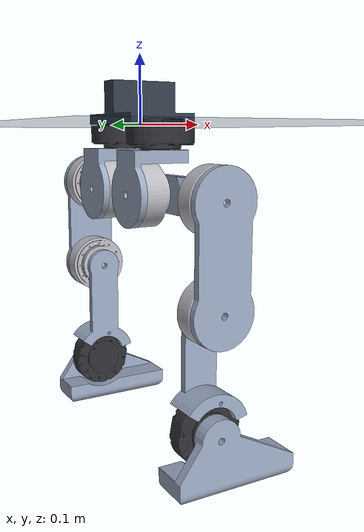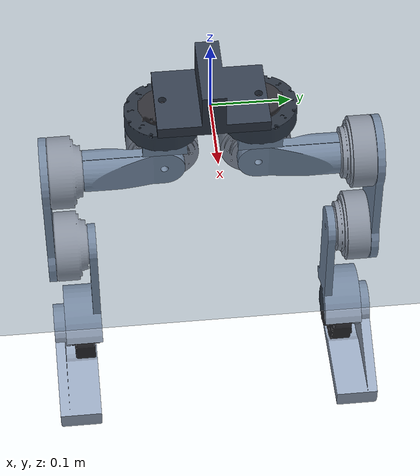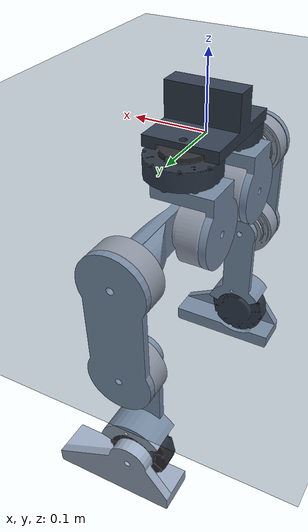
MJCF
<mujoco model="big_rabbit scene">
  <!-- big_rabbit.xml は big_rabbit_isaac/reference_model/big_rabbit_isaac.xml のコピー。
       Isaac の USD も同じ MJCF から生成しているので、両者のモデルは定義上一致する。
       床は MJCF 側に入れない方針なので、ここで足す。 -->
  <include file="big_rabbit.xml"/>

  <visual>
    <headlight diffuse="0.6 0.6 0.6" ambient="0.3 0.3 0.3" specular="0 0 0"/>
    <rgba haze="0.15 0.25 0.35 1"/>
    <!-- offwidth/offheight は動画書き出し（オフスクリーン描画）の上限。既定 640x480 では足りない。 -->
    <global azimuth="150" elevation="-15" offwidth="1280" offheight="960"/>
  </visual>

  <asset>
    <texture type="skybox" builtin="gradient" rgb1="0.3 0.5 0.7" rgb2="0 0 0" width="512" height="3072"/>
    <texture type="2d" name="groundplane" builtin="checker" mark="edge" rgb1="0.2 0.3 0.4"
             rgb2="0.1 0.2 0.3" markrgb="0.8 0.8 0.8" width="300" height="300"/>
    <material name="groundplane" texture="groundplane" texuniform="true" texrepeat="5 5" reflectance="0.1"/>
  </asset>

  <worldbody>
    <light pos="0 0 3" dir="0 0 -1" directional="true"/>
    <!-- 接触フィルタは MJCF 生成時の方針に合わせる。
         floor 1/1、foot 4/1、その他 body 2/1 なので、胴体・脚は床としか当たらない。 -->
    <geom name="floor" type="plane" size="0 0 0.05" material="groundplane"
          contype="1" conaffinity="1" friction="1.0 0.01 0.001"/>
  </worldbody>
</mujoco>

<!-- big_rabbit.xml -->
<mujoco model="big_rabbit_isaac">
  <compiler angle="radian" meshdir="meshes" autolimits="true" inertiafromgeom="false"/>
  <option timestep="0.002" gravity="0 0 -9.81"/>
  <asset>
    <material name="pelvis" rgba="0.20 0.24 0.30 1"/>
    <material name="link" rgba="0.60 0.66 0.75 1"/>
    <material name="motor_go" rgba="0.18 0.18 0.20 1"/>
    <material name="motor_a1" rgba="0.72 0.72 0.75 1"/>
    <mesh name="pelvis_base" file="PELVIS_BASE_LINK.STL" scale="0.001 0.001 0.001"/>
    <mesh name="hip_yaw_roll" file="HIP_YAW_ROLL_LINK.STL" scale="0.001 0.001 0.001"/>
    <mesh name="hip_roll_pitch" file="HIP_ROLL_PITCH_LINK.STL" scale="0.001 0.001 0.001"/>
    <mesh name="thigh" file="THIGH_LINK.STL" scale="0.001 0.001 0.001"/>
    <mesh name="shin_a" file="SHIN_LINK_A.STL" scale="0.001 0.001 0.001"/>
    <mesh name="shin_b" file="SHIN_LINK_B.STL" scale="0.001 0.001 0.001"/>
    <mesh name="foot_a" file="FOOT_LINK_A.STL" scale="0.001 0.001 0.001"/>
    <mesh name="foot_b" file="FOOT_LINK_B.STL" scale="0.001 0.001 0.001"/>
    <mesh name="motor_go_mesh" file="Unitree_GO_M8010_6_Motor.STL" scale="0.001 0.001 0.001"/>
    <mesh name="motor_a1_normal_mesh" file="Unitree_A1_Motor_Origin_Normal.STL" scale="0.001 0.001 0.001"/>
    <mesh name="motor_a1_surface_mesh" file="Unitree_A1_Motor_Origin_Surface.STL" scale="0.001 0.001 0.001"/>
  </asset>
  <worldbody>
    <body name="pelvis" pos="0 0 0" quat="1 0 0 0">
      <freejoint name="root"/>
      <inertial pos="3.703961853e-20 -0.0001668116122 0.02968710979" mass="1.20735" fullinertia="0.004687131074 0.000859551684 0.00529399977 1.656299981e-06 -1.284720523e-06 1.551123311e-06"/>
      <geom name="pelvis_visual" type="mesh" mesh="pelvis_base" material="pelvis" pos="0 0 0" quat="1 0 0 0" contype="0" conaffinity="0" group="2" density="0"/>
      <site name="imu" pos="0 0 0" size="0.005" rgba="1 0 0 1" quat="1 0 0 0"/>
      <geom type="mesh" mesh="motor_go_mesh" material="motor_go" pos="0 0.06 0.00745" quat="4.329780281e-17 0.7071067812 0.7071067812 -4.329780281e-17" name="pelvis_visual_1" contype="0" conaffinity="0" group="2" density="0"/>
      <geom type="mesh" mesh="motor_go_mesh" material="motor_go" pos="0 -0.06 0.00745" quat="4.329780281e-17 0.7071067812 0.7071067812 -4.329780281e-17" name="pelvis_visual_2" contype="0" conaffinity="0" group="2" density="0"/>
      <geom name="pelvis_collision" type="box" pos="-4.749558866e-05 0.0006945701316 0" size="0.04691881128 0.08121281344 0.0700000003" contype="2" conaffinity="1" group="3" density="0" rgba="0.9 0.3 0.3 0.25"/>
      <body name="left_hip_yaw" pos="0 0.06 0.00745" quat="4.329780281e-17 0.7071067812 0.7071067812 -4.329780281e-17">
        <joint name="left_hip_yaw_joint" type="hinge" axis="0 0 -1" pos="0 0 0" range="-2.094395102 2.094395102" armature="0.01" damping="0.2"/>
        <inertial pos="-1.379038727e-18 -0.01801808511 0.1004785106" mass="0.68244" fullinertia="0.0005725082251 0.0007340480582 0.0004745169769 -7.368685611e-20 4e-08 -6.020694264e-05"/>
        <geom type="mesh" mesh="hip_yaw_roll" material="link" pos="0 0 0.04275" quat="4.329780281e-17 0.7071067812 0.7071067812 -4.329780281e-17" name="left_hip_yaw_visual_0" contype="0" conaffinity="0" group="2" density="0"/>
        <geom type="mesh" mesh="motor_a1_normal_mesh" material="motor_a1" pos="9.769962617e-18 -0.044 0.10375" quat="-0.5 0.5 -0.5 -0.5" name="left_hip_yaw_visual_1" contype="0" conaffinity="0" group="2" density="0"/>
        <geom name="left_hip_yaw_collision" type="box" pos="0 -0.02681021032 0.0518506147" size="0.04635564238 0.06318978605 0.07189354918" contype="2" conaffinity="1" group="3" density="0" rgba="0.9 0.3 0.3 0.25"/>
        <body name="left_hip_roll" pos="9.769962617e-18 -0.044 0.10375" quat="-0.5 0.5 -0.5 -0.5">
          <joint name="left_hip_roll_joint" type="hinge" axis="0 0 1" pos="0 0 0" range="-2.094395102 2.094395102" armature="0.01" damping="0.2"/>
          <inertial pos="0 -0.1127605492 0.05067552814" mass="0.68627" fullinertia="0.0007687080887 0.0005991377806 0.0007769818081 8.000000028e-08 -9.999993622e-08 -4.39734747e-06"/>
          <geom type="mesh" mesh="hip_roll_pitch" material="link" pos="0 0 0.04405" quat="1 0 0 0" name="left_hip_roll_visual_0" contype="0" conaffinity="0" group="2" density="0"/>
          <geom type="mesh" mesh="motor_a1_surface_mesh" material="motor_a1" pos="0 -0.1035 0.05055" quat="0.7071067812 -0.7071067812 0 0" name="left_hip_roll_visual_1" contype="0" conaffinity="0" group="2" density="0"/>
          <geom name="left_hip_roll_collision" type="box" pos="-0.0008855145425 -0.06149746514 0.02909463111" size="0.0265159253 0.08800253122 0.06745526467" contype="2" conaffinity="1" group="3" density="0" rgba="0.9 0.3 0.3 0.25"/>
          <body name="left_thigh" pos="0 -0.1035 0.05055" quat="0.7071067812 -0.7071067812 0 0">
            <joint name="left_hip_pitch_joint" type="hinge" axis="0 0 -1" pos="0 0 0" range="-2.094395102 2.094395102" armature="0.01" damping="0.2"/>
            <inertial pos="-0.1333759834 2.436376567e-17 -0.02107167072" mass="0.6991" fullinertia="0.0005209490662 0.001278179544 0.001437325858 4e-08 0.0001882411562 -6.860605059e-20"/>
            <geom type="mesh" mesh="thigh" material="link" pos="0 0 -0.04405" quat="0.5 0.5 0.5 0.5" name="left_thigh_visual_0" contype="0" conaffinity="0" group="2" density="0"/>
            <geom type="mesh" mesh="motor_a1_normal_mesh" material="motor_a1" pos="-0.143 3.17523785e-17 -0.04405" quat="1 1.110223025e-16 0 -5.551115123e-17" name="left_thigh_visual_1" contype="0" conaffinity="0" group="2" density="0"/>
            <geom name="left_thigh_collision" type="box" pos="-0.02288357673 1.043081284e-07 -0.04404999627" size="0.1401105872 0.04600000009 0.04600000009" contype="2" conaffinity="1" group="3" density="0" rgba="0.9 0.3 0.3 0.25"/>
            <body name="left_shin" pos="-0.143 3.17523785e-17 -0.04405" quat="1 1.110223025e-16 0 -5.551115123e-17">
              <joint name="left_knee_joint" type="hinge" axis="0 0 -1" pos="0 0 0" range="-3.141592654 2.094395102" armature="0.01" damping="0.2"/>
              <inertial pos="-0.15851995 0.0008522385755 0.0714584881" mass="0.5966" fullinertia="0.0004504000669 0.001049057918 0.001251574754 3.496889019e-05 0.0002050768071 -7.126677093e-06"/>
              <geom type="mesh" mesh="shin_b" material="link" pos="0 0 0.04405" quat="0.5 -0.5 0.5 -0.5" name="left_shin_visual_0" contype="0" conaffinity="0" group="2" density="0"/>
              <geom type="mesh" mesh="motor_go_mesh" material="motor_go" pos="-0.16842 0.00136 0.0522" quat="1.110223025e-16 0.09584575252 0.9953961984 -8.326672685e-17" name="left_shin_visual_1" contype="0" conaffinity="0" group="2" density="0"/>
              <geom name="left_shin_collision" type="box" pos="-0.04214471237 0.001445907268 0.04766028494" size="0.1567417647 0.05010437619 0.05285619007" contype="2" conaffinity="1" group="3" density="0" rgba="0.9 0.3 0.3 0.25"/>
              <body name="left_foot" pos="-0.16842 0.00136 0.0522" quat="1.110223025e-16 0.09584575252 0.9953961984 -8.326672685e-17">
                <joint name="left_ankle_joint" type="hinge" axis="0 0 1" pos="0 0 0" range="-2.094395102 2.094395102" armature="0.01" damping="0.2"/>
                <inertial pos="0.04477691222 -0.03498664077 0.04017" mass="0.21775" fullinertia="0.0005712828051 0.0002195931749 0.00067714978 -0.0001213503102 -3.368963785e-05 2.307671975e-05"/>
                <geom type="mesh" mesh="foot_b" material="link" pos="0 0 0.04275" quat="0.7038514018 -0.06777318155 -0.7038514018 -0.06777318155" name="left_foot_visual_0" contype="0" conaffinity="0" group="2" density="0"/>
                <geom name="left_foot_collision" contype="4" conaffinity="1" group="3" friction="1.0 0.01 0.001" density="0" type="capsule" fromto="0.05175948446 -0.1058203939 0.03475 0.07637384486 0.02080951275 0.03475" size="0.013"/>
                <site name="left_foot_contact" pos="0.07290130931 -0.04422272154 0.03475" size="0.006" type="sphere" quat="0.7038514018 -0.06777318155 -0.7038514018 -0.06777318155"/>
              </body>
            </body>
          </body>
        </body>
      </body>
      <body name="right_hip_yaw" pos="0 -0.06 0.00745" quat="4.329780281e-17 0.7071067812 0.7071067812 -4.329780281e-17">
        <joint name="right_hip_yaw_joint" type="hinge" axis="0 0 -1" pos="0 0 0" range="-2.094395102 2.094395102" armature="0.01" damping="0.2"/>
        <inertial pos="-1.379038727e-18 -0.01801808511 0.1004785106" mass="0.68244" fullinertia="0.0005725082251 0.0007340480582 0.0004745169769 -7.368685611e-20 4e-08 -6.020694264e-05"/>
        <geom type="mesh" mesh="hip_yaw_roll" material="link" pos="0 0 0.04275" quat="4.329780281e-17 0.7071067812 0.7071067812 -4.329780281e-17" name="right_hip_yaw_visual_0" contype="0" conaffinity="0" group="2" density="0"/>
        <geom type="mesh" mesh="motor_a1_normal_mesh" material="motor_a1" pos="9.769962617e-18 -0.044 0.10375" quat="-0.5 0.5 -0.5 -0.5" name="right_hip_yaw_visual_1" contype="0" conaffinity="0" group="2" density="0"/>
        <geom name="right_hip_yaw_collision" type="box" pos="0 -0.02681021032 0.0518506147" size="0.04635564238 0.06318978605 0.07189354918" contype="2" conaffinity="1" group="3" density="0" rgba="0.9 0.3 0.3 0.25"/>
        <body name="right_hip_roll" pos="9.769962617e-18 -0.044 0.10375" quat="-0.5 0.5 -0.5 -0.5">
          <joint name="right_hip_roll_joint" type="hinge" axis="0 0 1" pos="0 0 0" range="-2.094395102 2.094395102" armature="0.01" damping="0.2"/>
          <inertial pos="1.561431041e-17 0.1127605492 0.05067552814" mass="0.68627" fullinertia="0.0007687080887 0.0005991377806 0.0007769818081 8.000000028e-08 9.999993622e-08 4.39734747e-06"/>
          <geom type="mesh" mesh="hip_roll_pitch" material="link" pos="0 0 0.04405" quat="6.123233996e-17 0 0 1" name="right_hip_roll_visual_0" contype="0" conaffinity="0" group="2" density="0"/>
          <geom type="mesh" mesh="motor_a1_surface_mesh" material="motor_a1" pos="1.267509437e-17 0.1035 0.05055" quat="-0.7071067812 -0.7071067812 8.659560562e-17 8.659560562e-17" name="right_hip_roll_visual_1" contype="0" conaffinity="0" group="2" density="0"/>
          <geom name="right_hip_roll_collision" type="box" pos="0.0008855145425 0.06149746514 0.02909473542" size="0.0265159253 0.08800253122 0.06745536898" contype="2" conaffinity="1" group="3" density="0" rgba="0.9 0.3 0.3 0.25"/>
          <body name="right_thigh" pos="1.267509437e-17 0.1035 0.05055" quat="-0.7071067812 -0.7071067812 8.659560562e-17 8.659560562e-17">
            <joint name="right_hip_pitch_joint" type="hinge" axis="0 0 1" pos="0 0 0" range="-2.094395102 2.094395102" armature="0.01" damping="0.2"/>
            <inertial pos="-0.1333759834 2.436376567e-17 -0.02107167072" mass="0.6991" fullinertia="0.0005209490662 0.001278179544 0.001437325858 4e-08 0.0001882411562 -6.860605059e-20"/>
            <geom type="mesh" mesh="thigh" material="link" pos="0 0 -0.04405" quat="0.5 0.5 0.5 0.5" name="right_thigh_visual_0" contype="0" conaffinity="0" group="2" density="0"/>
            <geom type="mesh" mesh="motor_a1_normal_mesh" material="motor_a1" pos="-0.143 3.17523785e-17 -0.04405" quat="1 1.110223025e-16 0 -5.551115123e-17" name="right_thigh_visual_1" contype="0" conaffinity="0" group="2" density="0"/>
            <geom name="right_thigh_collision" type="box" pos="-0.02288357673 1.043081284e-07 -0.04404999627" size="0.1401105872 0.04600000009 0.04600000009" contype="2" conaffinity="1" group="3" density="0" rgba="0.9 0.3 0.3 0.25"/>
            <body name="right_shin" pos="-0.143 3.17523785e-17 -0.04405" quat="1 1.110223025e-16 0 -5.551115123e-17">
              <joint name="right_knee_joint" type="hinge" axis="0 0 1" pos="0 0 0" range="-3.141592654 2.094395102" armature="0.01" damping="0.2"/>
              <inertial pos="-0.1586083289 -0.0008723462261 0.0715717221" mass="0.59497" fullinertia="0.0004469592378 0.001043717436 0.001248598854 -3.540289075e-05 0.0002015769844 5.494602644e-06"/>
              <geom type="mesh" mesh="shin_a" material="link" pos="0 0 0.04405" quat="0.5 0.5 0.5 0.5" name="right_shin_visual_0" contype="0" conaffinity="0" group="2" density="0"/>
              <geom type="mesh" mesh="motor_go_mesh" material="motor_go" pos="-0.16842 -0.00136 0.0522" quat="1.110223025e-16 -0.09584575252 0.9953961984 8.326672685e-17" name="right_shin_visual_1" contype="0" conaffinity="0" group="2" density="0"/>
              <geom name="right_shin_collision" type="box" pos="-0.04227642477 -0.00153915319 0.05109653927" size="0.1565919271 0.05010437619 0.04941993573" contype="2" conaffinity="1" group="3" density="0" rgba="0.9 0.3 0.3 0.25"/>
              <body name="right_foot" pos="-0.16842 -0.00136 0.0522" quat="1.110223025e-16 -0.09584575252 0.9953961984 8.326672685e-17">
                <joint name="right_ankle_joint" type="hinge" axis="0 0 -1" pos="0 0 0" range="-2.094395102 2.094395102" armature="0.01" damping="0.2"/>
                <inertial pos="0.04477691222 0.03498664077 0.04017" mass="0.21775" fullinertia="0.0005712821551 0.0002195925249 0.00067714978 0.0001213503102 -3.368896894e-05 -2.307596833e-05"/>
                <geom type="mesh" mesh="foot_a" material="link" pos="0 0 0.04275" quat="-0.06777318155 -0.7038514018 -0.06777318155 0.7038514018" name="right_foot_visual_0" contype="0" conaffinity="0" group="2" density="0"/>
                <geom name="right_foot_collision" contype="4" conaffinity="1" group="3" friction="1.0 0.01 0.001" density="0" type="capsule" fromto="0.05175948446 0.1058203939 0.03475 0.07637384486 -0.02080951275 0.03475" size="0.013"/>
                <site name="right_foot_contact" pos="0.07290130931 0.04422272154 0.03475" size="0.006" type="sphere" quat="-0.06777318155 -0.7038514018 -0.06777318155 0.7038514018"/>
              </body>
            </body>
          </body>
        </body>
      </body>
    </body>
  </worldbody>
  <actuator>
    <motor gear="6.33" ctrllimited="true" ctrlrange="-3.74407583 3.74407583" user="30" forcelimited="true" forcerange="-23.7 23.7" name="left_hip_yaw" joint="left_hip_yaw_joint"/>
    <motor gear="9.1" ctrllimited="true" ctrlrange="-3.68131868 3.68131868" user="21" forcelimited="true" forcerange="-33.5 33.5" name="left_hip_roll" joint="left_hip_roll_joint"/>
    <motor gear="9.1" ctrllimited="true" ctrlrange="-3.68131868 3.68131868" user="21" forcelimited="true" forcerange="-33.5 33.5" name="left_hip_pitch" joint="left_hip_pitch_joint"/>
    <motor gear="9.1" ctrllimited="true" ctrlrange="-3.68131868 3.68131868" user="21" forcelimited="true" forcerange="-33.5 33.5" name="left_knee" joint="left_knee_joint"/>
    <motor gear="6.33" ctrllimited="true" ctrlrange="-3.74407583 3.74407583" user="30" forcelimited="true" forcerange="-23.7 23.7" name="left_ankle" joint="left_ankle_joint"/>
    <motor gear="6.33" ctrllimited="true" ctrlrange="-3.74407583 3.74407583" user="30" forcelimited="true" forcerange="-23.7 23.7" name="right_hip_yaw" joint="right_hip_yaw_joint"/>
    <motor gear="9.1" ctrllimited="true" ctrlrange="-3.68131868 3.68131868" user="21" forcelimited="true" forcerange="-33.5 33.5" name="right_hip_roll" joint="right_hip_roll_joint"/>
    <motor gear="9.1" ctrllimited="true" ctrlrange="-3.68131868 3.68131868" user="21" forcelimited="true" forcerange="-33.5 33.5" name="right_hip_pitch" joint="right_hip_pitch_joint"/>
    <motor gear="9.1" ctrllimited="true" ctrlrange="-3.68131868 3.68131868" user="21" forcelimited="true" forcerange="-33.5 33.5" name="right_knee" joint="right_knee_joint"/>
    <motor gear="6.33" ctrllimited="true" ctrlrange="-3.74407583 3.74407583" user="30" forcelimited="true" forcerange="-23.7 23.7" name="right_ankle" joint="right_ankle_joint"/>
  </actuator>
  <sensor>
    <jointpos name="left_hip_yaw_pos" joint="left_hip_yaw_joint"/>
    <jointpos name="left_hip_roll_pos" joint="left_hip_roll_joint"/>
    <jointpos name="left_hip_pitch_pos" joint="left_hip_pitch_joint"/>
    <jointpos name="left_knee_pos" joint="left_knee_joint"/>
    <jointpos name="left_ankle_pos" joint="left_ankle_joint"/>
    <jointpos name="right_hip_yaw_pos" joint="right_hip_yaw_joint"/>
    <jointpos name="right_hip_roll_pos" joint="right_hip_roll_joint"/>
    <jointpos name="right_hip_pitch_pos" joint="right_hip_pitch_joint"/>
    <jointpos name="right_knee_pos" joint="right_knee_joint"/>
    <jointpos name="right_ankle_pos" joint="right_ankle_joint"/>
    <framequat name="imu_quat" objtype="site" objname="imu"/>
    <gyro name="imu_gyro" site="imu"/>
    <accelerometer name="imu_accel" site="imu"/>
  </sensor>
</mujoco>
